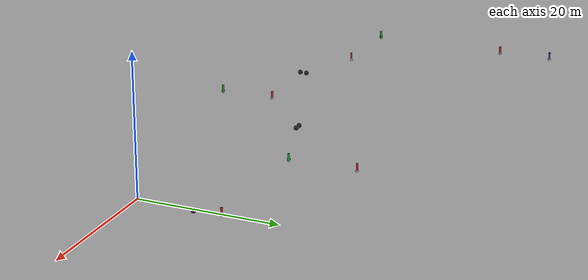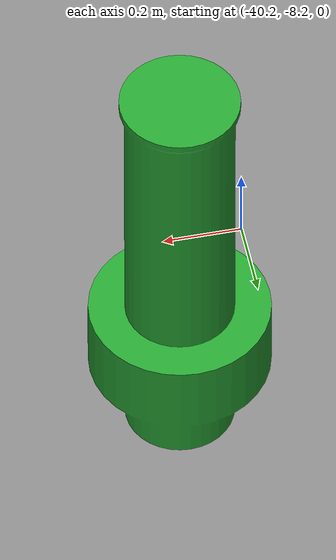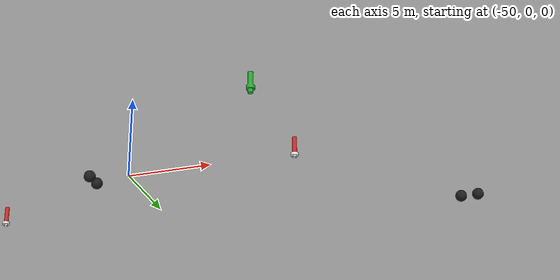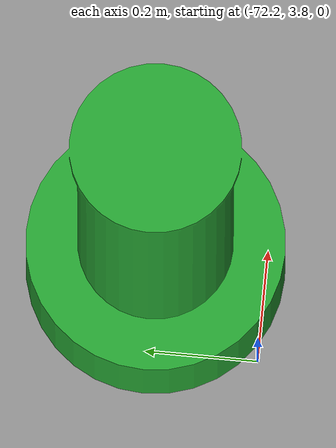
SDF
<?xml version="1.0"?>
<!-- Model for the VRX navigation course -->
<sdf version="1.6">
  <model name="vrx_navigation_course_2">

    <!-- Starboard_border -->
    <include>
      <name>red_bound_0</name>
      <pose>0 12 0 0 0 0</pose>
      <uri>model://red_totem</uri>
    </include>

    <include>
      <name>red_bound_1</name>
      <pose>-20 22 0 0 0 0</pose>
      <uri>model://red_totem</uri>
    </include>

    <include>
      <name>red_bound_2</name>
      <pose>-40 0 0 0 0 0</pose>
      <uri>model://red_totem</uri>
    </include>

    <include>
      <name>red_bound_3</name>
      <pose>-60 4 0 0 0 0</pose>
      <uri>model://red_totem</uri>
    </include>

    <include>
      <name>red_bound_4</name>
      <pose>-72 24 0 0 0 0</pose>
      <uri>model://red_totem</uri>
    </include>

    <!-- Port_border -->
    <include>
      <name>green_bound_0</name>
      <pose>0 0 0.2 0 0 0</pose>
      <uri>model://surmark46104</uri>
    </include>

    <include>
      <name>green_bound_1</name>
      <pose>-20 12 0.2 0 0 0</pose>
      <uri>model://surmark950400</uri>
    </include>

    <include>
      <name>green_bound_2</name>
      <pose>-40 -8 0.2 0 0 0</pose>
      <uri>model://surmark950400</uri>
    </include>

    <include>
      <name>green_bound_3</name>
      <pose>-72 4 0.2 0 0 0</pose>
      <uri>model://surmark950400</uri>
    </include>

    <include>
      <name>green_bound_4</name>
      <pose>-72 32 0.2 0 0 0</pose>
      <uri>model://blue_totem</uri>
    </include>

    <!-- Obstacles -->
    <include>
      <name>obstacle_1</name>
      <pose>0 8 -0.2 0 -0 0</pose>
      <uri>model://polyform_a5</uri>
    </include>

    <include>
      <name>obstacle_2</name>
      <pose>-32 8 -0.2 0 -0 0</pose>
      <uri>model://polyform_a5</uri>
    </include>

    <include>
      <name>obstacle_3</name>
      <pose>-31 8 -0.2 0 -0 0</pose>
      <uri>model://polyform_a5</uri>
    </include>

    <include>
      <name>obstacle_4</name>
      <pose>-52 0 -0.2 0 -0 0</pose>
      <uri>model://polyform_a5</uri>
    </include>

    <include>
      <name>obstacle_5</name>
      <pose>-52 -1 -0.2 0 -0 0</pose>
      <uri>model://polyform_a5</uri>
    </include>

  </model>

</sdf>

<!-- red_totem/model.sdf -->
<sdf version="1.6">
  <model name="red_totem">
    <link name="link">
      <inertial>
        <pose>0 0 -2 0 0 0</pose>
        <!-- Mass determined based on buoyancy geometry so object
             floats at mid-point of sphere -->
        <mass>25</mass>
        <!-- Mark only - based on cylinder -->
        <inertia>
          <ixx>1.0</ixx>
          <ixy>0</ixy>
          <ixz>0</ixz>
          <iyy>1.0</iyy>
          <iyz>0</iyz>
          <izz>0.1</izz>
        </inertia>
      </inertial>
      <collision name="collision_inner">
        <pose>0 0 0.367 0 0 0</pose>
        <geometry>
          <cylinder>
            <radius>0.13</radius>
            <length>1.25</length>
          </cylinder>
        </geometry>
      </collision>
      <collision name="collision_outer">
        <pose>0 0 -0.075 0 0 0</pose>
        <geometry>
          <cylinder>
            <radius>0.23</radius>
            <length>0.16</length>
          </cylinder>
        </geometry>
      </collision>
      <visual name="visual">
        <geometry>
          <mesh><uri>model://surmark46104/mesh/surmark46104.dae</uri></mesh>
        </geometry>
        <material>
          <script>
            <uri>file://media/materials/scripts/gazebo.material</uri>
            <name>Gazebo/White</name>
          </script>
        </material>
      </visual>
      <visual name="cover_visual">
        <pose>0 0 0.492 0 0 0</pose>
        <geometry>
          <cylinder>
            <radius>0.131</radius>
            <length>1</length>
          </cylinder>
        </geometry>
        <material>
          <script>
            <uri>file://media/materials/scripts/gazebo.material</uri>
            <name>Gazebo/Red</name>
          </script>
        </material>
      </visual>
    </link>
    <plugin name="BuoyancyPlugin" filename="libbuoyancy_gazebo_plugin.so">
      <wave_model>ocean_waves</wave_model>
      <fluid_density>1000</fluid_density>
      <fluid_level>0.0</fluid_level>
      <linear_drag>25.0</linear_drag>
      <angular_drag>2.0</angular_drag>
      <buoyancy name="buoyancy_sphere">
        <link_name>link</link_name>
        <pose>0 0 -0.08 0 0 0</pose>
        <geometry>
          <sphere>
            <radius>0.23</radius>
          </sphere>
        </geometry>
      </buoyancy>
    </plugin>
  </model>
</sdf>

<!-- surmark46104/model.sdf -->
<sdf version="1.6">
  <model name="surmark46104">
    <link name="link">
      <inertial>
        <pose>0 0 -2 0 0 0</pose>
        <!-- Mass determined based on buoyancy geometry so object
             floats at mid-point of sphere -->
        <mass>25</mass>
        <!-- Mark only - based on cylinder -->
        <inertia>
          <ixx>1.0</ixx>
          <ixy>0</ixy>
          <ixz>0</ixz>
          <iyy>1.0</iyy>
          <iyz>0</iyz>
          <izz>0.1</izz>
        </inertia>
      </inertial>
      <collision name="collision_inner">
        <pose>0 0 0.367 0 0 0</pose>
        <geometry>
          <cylinder>
            <radius>0.13</radius>
            <length>1.25</length>
          </cylinder>
        </geometry>
      </collision>
      <collision name="collision_outer">
        <pose>0 0 -0.075 0 0 0</pose>
        <geometry>
          <cylinder>
            <radius>0.23</radius>
            <length>0.16</length>
          </cylinder>
        </geometry>
      </collision>
      <visual name="visual">
        <geometry>
	        <mesh><uri>model://surmark46104/mesh/surmark46104.dae</uri></mesh>
        </geometry>
        <material>
          <script>
            <uri>file://media/materials/scripts/gazebo.material</uri>
            <name>Gazebo/White</name>
          </script>
        </material>
      </visual>
    </link>
    <plugin name="BuoyancyPlugin" filename="libbuoyancy_gazebo_plugin.so">
      <wave_model>ocean_waves</wave_model>
      <fluid_density>1000</fluid_density>
      <fluid_level>0.0</fluid_level>
      <linear_drag>25.0</linear_drag>
      <angular_drag>2.0</angular_drag>
      <buoyancy name="buoyancy_sphere">
        <link_name>link</link_name>
        <pose>0 0 -0.08 0 0 0</pose>
        <geometry>
          <sphere>
            <radius>0.23</radius>
          </sphere>
        </geometry>
      </buoyancy>
    </plugin>
  </model>
</sdf>

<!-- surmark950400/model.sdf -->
<sdf version="1.6">
  <model name="surmark950400">
    <link name="link">
      <inertial>
        <pose>0 0 -2 0 0 0</pose>
        <!-- Mass determined based on buoyancy geometry so object
             floats at mid-point of sphere -->
        <mass>25</mass>
        <!-- Mark only - based on cylinder -->
        <inertia>
          <ixx>1.0</ixx>
          <ixy>0</ixy>
          <ixz>0</ixz>
          <iyy>1.0</iyy>
          <iyz>0</iyz>
          <izz>0.1</izz>
        </inertia>
      </inertial>
      <collision name="collision_inner">
        <pose>0 0 -0.02 0 0 0</pose>
        <geometry>
          <cylinder>
            <radius>0.15</radius>
            <length>1.18</length>
          </cylinder>
        </geometry>
      </collision>
      <collision name="collision_outer">
        <pose>0 0 -0.31 0 0 0</pose>
        <geometry>
          <cylinder>
            <radius>0.24</radius>
            <length>0.2</length>
          </cylinder>
        </geometry>
      </collision>
      <visual name="visual">
        <geometry>
	        <mesh><uri>model://surmark950400/mesh/surmark950400.dae</uri></mesh>
        </geometry>
        <material>
          <script>
            <uri>model://surmark950400/materials/scripts/surmark950400.material</uri>
            <name>surmark950400/Green</name>
          </script>
        </material>
      </visual>
    </link>

    <plugin name="BuoyancyPlugin" filename="libbuoyancy_gazebo_plugin.so">
      <wave_model>ocean_waves</wave_model>
      <fluid_density>1000</fluid_density>
      <fluid_level>0.0</fluid_level>
      <linear_drag>25.0</linear_drag>
      <angular_drag>2.0</angular_drag>
      <buoyancy name="buoyancy_sphere">
        <link_name>link</link_name>
        <pose>0 0 -0.31 0 0 0</pose>
        <geometry>
          <sphere>
            <radius>0.23</radius>
          </sphere>
        </geometry>
      </buoyancy>
    </plugin>

  </model>
</sdf>

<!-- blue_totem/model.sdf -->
<sdf version="1.6">
  <model name="blue_totem">
    <link name="link">
      <inertial>
        <pose>0 0 -2 0 0 0</pose>
        <!-- Mass determined based on buoyancy geometry so object
             floats at mid-point of sphere -->
        <mass>25</mass>
        <!-- Mark only - based on cylinder -->
        <inertia>
          <ixx>1.0</ixx>
          <ixy>0</ixy>
          <ixz>0</ixz>
          <iyy>1.0</iyy>
          <iyz>0</iyz>
          <izz>0.1</izz>
        </inertia>
      </inertial>
      <collision name="collision_inner">
        <pose>0 0 0.367 0 0 0</pose>
        <geometry>
          <cylinder>
            <radius>0.13</radius>
            <length>1.25</length>
          </cylinder>
        </geometry>
      </collision>
      <collision name="collision_outer">
        <pose>0 0 -0.075 0 0 0</pose>
        <geometry>
          <cylinder>
            <radius>0.23</radius>
            <length>0.16</length>
          </cylinder>
        </geometry>
      </collision>
      <visual name="visual">
        <geometry>
          <mesh><uri>model://surmark46104/mesh/surmark46104.dae</uri></mesh>
        </geometry>
        <material>
          <script>
            <uri>file://media/materials/scripts/gazebo.material</uri>
            <name>Gazebo/White</name>
          </script>
        </material>
      </visual>
      <visual name="cover_visual">
        <pose>0 0 0.492 0 0 0</pose>
        <geometry>
          <cylinder>
            <radius>0.131</radius>
            <length>1</length>
          </cylinder>
        </geometry>
        <material>
          <script>
            <uri>file://media/materials/scripts/gazebo.material</uri>
            <name>Gazebo/Blue</name>
          </script>
        </material>
      </visual>
    </link>
    <plugin name="BuoyancyPlugin" filename="libbuoyancy_gazebo_plugin.so">
      <wave_model>ocean_waves</wave_model>
      <fluid_density>1000</fluid_density>
      <fluid_level>0.0</fluid_level>
      <linear_drag>25.0</linear_drag>
      <angular_drag>2.0</angular_drag>
      <buoyancy name="buoyancy_sphere">
        <link_name>link</link_name>
        <pose>0 0 -0.08 0 0 0</pose>
        <geometry>
          <sphere>
            <radius>0.23</radius>
          </sphere>
        </geometry>
      </buoyancy>
    </plugin>
  </model>
</sdf>

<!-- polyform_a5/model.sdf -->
<sdf version="1.6">
  <!-- Reference: https://www.polyformus.com/buoys/a-series -->
  <model name="polyform_a5">
    <static>false</static>
    <pose>0 0 0 0 0 0</pose>
    <link name="base_link">
      <inertial>
        <!-- Reference: https://www.sailrite.com/PDF/Polyform-Buoys-Fenders-Accessories.pdf, page 8 -->
        <mass>8.98</mass>
      </inertial>
      <visual name="visual">
        <geometry>
          <sphere><radius>0.343</radius></sphere>
        </geometry>
        <material>
          <script>
            <uri>file://media/materials/scripts/gazebo.material</uri>
            <name>Gazebo/Black</name>
          </script>
        </material>
      </visual>
      <collision name="collision">
        <geometry>
          <sphere><radius>0.343</radius></sphere>
        </geometry>
      </collision>
    </link>

    <plugin name="BuoyancyPlugin" filename="libbuoyancy_gazebo_plugin.so">
      <wave_model>ocean_waves</wave_model>
      <fluid_density>1000</fluid_density>
      <fluid_level>0.0</fluid_level>
      <linear_drag>20.0</linear_drag>
      <angular_drag>2.0</angular_drag>
      <buoyancy name="buoyancy">
        <link_name>base_link</link_name>
        <geometry>
          <sphere><radius>0.343</radius></sphere>
        </geometry>
      </buoyancy>
    </plugin>

  </model>
</sdf>
